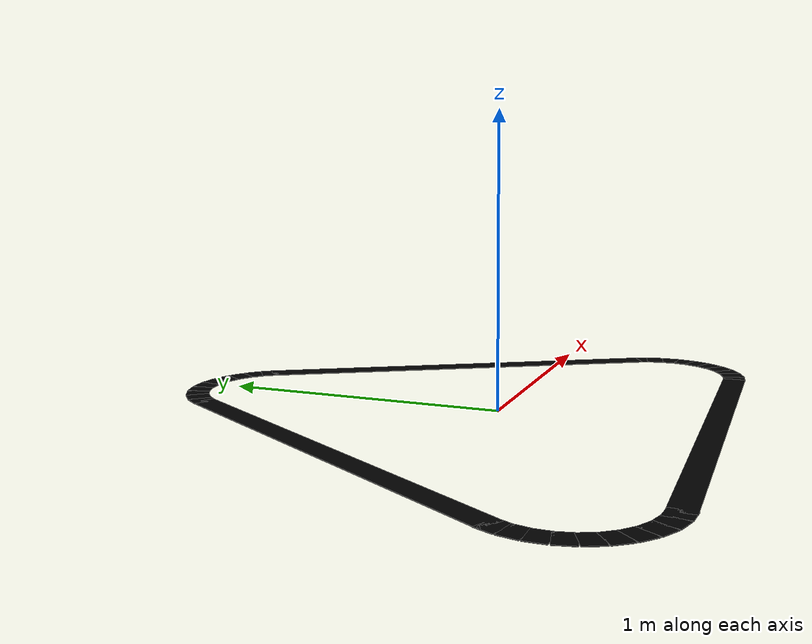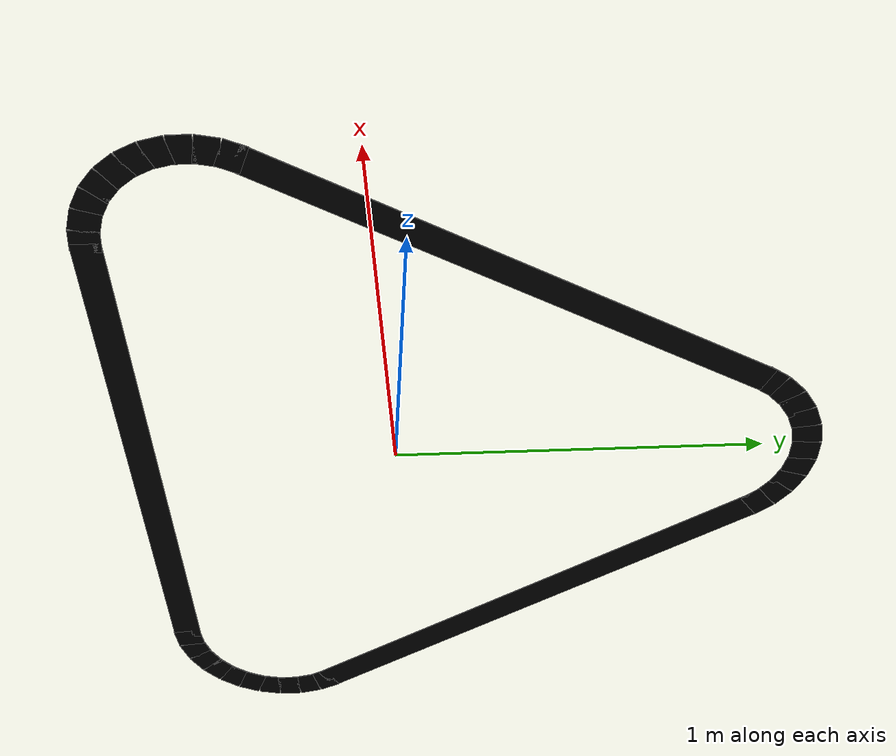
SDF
<?xml version="1.0"?>
<sdf version="1.8">
  <model name="line_track_triangle">
    <static>true</static>
    <link name="track">
      <visual name='seg_000'>
        <pose>-0.226525 1.004580 0.001000 0.000000 0.000000 0.942478</pose>
        <geometry>
          <box>
            <size>0.063335 0.080000 0.002000</size>
          </box>
        </geometry>
      <material>
        <ambient>0.02 0.02 0.02 1</ambient>
        <diffuse>0.02 0.02 0.02 1</diffuse>
        <specular>0.0 0.0 0.0 1</specular>
      </material>
      </visual>
      <visual name='seg_001'>
        <pose>-0.187357 1.048081 0.001000 0.000000 0.000000 0.733038</pose>
        <geometry>
          <box>
            <size>0.063335 0.080000 0.002000</size>
          </box>
        </geometry>
      <material>
        <ambient>0.02 0.02 0.02 1</ambient>
        <diffuse>0.02 0.02 0.02 1</diffuse>
        <specular>0.0 0.0 0.0 1</specular>
      </material>
      </visual>
      <visual name='seg_002'>
        <pose>-0.140000 1.082487 0.001000 0.000000 0.000000 0.523599</pose>
        <geometry>
          <box>
            <size>0.063335 0.080000 0.002000</size>
          </box>
        </geometry>
      <material>
        <ambient>0.02 0.02 0.02 1</ambient>
        <diffuse>0.02 0.02 0.02 1</diffuse>
        <specular>0.0 0.0 0.0 1</specular>
      </material>
      </visual>
      <visual name='seg_003'>
        <pose>-0.086525 1.106296 0.001000 0.000000 0.000000 0.314159</pose>
        <geometry>
          <box>
            <size>0.063335 0.080000 0.002000</size>
          </box>
        </geometry>
      <material>
        <ambient>0.02 0.02 0.02 1</ambient>
        <diffuse>0.02 0.02 0.02 1</diffuse>
        <specular>0.0 0.0 0.0 1</specular>
      </material>
      </visual>
      <visual name='seg_004'>
        <pose>-0.029268 1.118466 0.001000 0.000000 0.000000 0.104720</pose>
        <geometry>
          <box>
            <size>0.063335 0.080000 0.002000</size>
          </box>
        </geometry>
      <material>
        <ambient>0.02 0.02 0.02 1</ambient>
        <diffuse>0.02 0.02 0.02 1</diffuse>
        <specular>0.0 0.0 0.0 1</specular>
      </material>
      </visual>
      <visual name='seg_005'>
        <pose>0.029268 1.118466 0.001000 0.000000 0.000000 -0.104720</pose>
        <geometry>
          <box>
            <size>0.063335 0.080000 0.002000</size>
          </box>
        </geometry>
      <material>
        <ambient>0.02 0.02 0.02 1</ambient>
        <diffuse>0.02 0.02 0.02 1</diffuse>
        <specular>0.0 0.0 0.0 1</specular>
      </material>
      </visual>
      <visual name='seg_006'>
        <pose>0.086525 1.106296 0.001000 0.000000 0.000000 -0.314159</pose>
        <geometry>
          <box>
            <size>0.063335 0.080000 0.002000</size>
          </box>
        </geometry>
      <material>
        <ambient>0.02 0.02 0.02 1</ambient>
        <diffuse>0.02 0.02 0.02 1</diffuse>
        <specular>0.0 0.0 0.0 1</specular>
      </material>
      </visual>
      <visual name='seg_007'>
        <pose>0.140000 1.082487 0.001000 0.000000 0.000000 -0.523599</pose>
        <geometry>
          <box>
            <size>0.063335 0.080000 0.002000</size>
          </box>
        </geometry>
      <material>
        <ambient>0.02 0.02 0.02 1</ambient>
        <diffuse>0.02 0.02 0.02 1</diffuse>
        <specular>0.0 0.0 0.0 1</specular>
      </material>
      </visual>
      <visual name='seg_008'>
        <pose>0.187357 1.048081 0.001000 0.000000 0.000000 -0.733038</pose>
        <geometry>
          <box>
            <size>0.063335 0.080000 0.002000</size>
          </box>
        </geometry>
      <material>
        <ambient>0.02 0.02 0.02 1</ambient>
        <diffuse>0.02 0.02 0.02 1</diffuse>
        <specular>0.0 0.0 0.0 1</specular>
      </material>
      </visual>
      <visual name='seg_009'>
        <pose>0.226525 1.004580 0.001000 0.000000 0.000000 -0.942478</pose>
        <geometry>
          <box>
            <size>0.063335 0.080000 0.002000</size>
          </box>
        </geometry>
      <material>
        <ambient>0.02 0.02 0.02 1</ambient>
        <diffuse>0.02 0.02 0.02 1</diffuse>
        <specular>0.0 0.0 0.0 1</specular>
      </material>
      </visual>
      <visual name='seg_010'>
        <pose>-0.606218 0.350000 0.001000 0.000000 0.000000 -2.094395</pose>
        <geometry>
          <box>
            <size>1.498570 0.080000 0.002000</size>
          </box>
        </geometry>
      <material>
        <ambient>0.02 0.02 0.02 1</ambient>
        <diffuse>0.02 0.02 0.02 1</diffuse>
        <specular>0.0 0.0 0.0 1</specular>
      </material>
      </visual>
      <visual name='seg_011'>
        <pose>-0.756729 -0.698466 0.001000 0.000000 0.000000 -3.246312</pose>
        <geometry>
          <box>
            <size>0.063335 0.080000 0.002000</size>
          </box>
        </geometry>
      <material>
        <ambient>0.02 0.02 0.02 1</ambient>
        <diffuse>0.02 0.02 0.02 1</diffuse>
        <specular>0.0 0.0 0.0 1</specular>
      </material>
      </visual>
      <visual name='seg_012'>
        <pose>-0.813986 -0.686296 0.001000 0.000000 0.000000 -3.455752</pose>
        <geometry>
          <box>
            <size>0.063335 0.080000 0.002000</size>
          </box>
        </geometry>
      <material>
        <ambient>0.02 0.02 0.02 1</ambient>
        <diffuse>0.02 0.02 0.02 1</diffuse>
        <specular>0.0 0.0 0.0 1</specular>
      </material>
      </visual>
      <visual name='seg_013'>
        <pose>-0.867461 -0.662487 0.001000 0.000000 0.000000 -3.665191</pose>
        <geometry>
          <box>
            <size>0.063335 0.080000 0.002000</size>
          </box>
        </geometry>
      <material>
        <ambient>0.02 0.02 0.02 1</ambient>
        <diffuse>0.02 0.02 0.02 1</diffuse>
        <specular>0.0 0.0 0.0 1</specular>
      </material>
      </visual>
      <visual name='seg_014'>
        <pose>-0.914818 -0.628081 0.001000 0.000000 0.000000 -3.874631</pose>
        <geometry>
          <box>
            <size>0.063335 0.080000 0.002000</size>
          </box>
        </geometry>
      <material>
        <ambient>0.02 0.02 0.02 1</ambient>
        <diffuse>0.02 0.02 0.02 1</diffuse>
        <specular>0.0 0.0 0.0 1</specular>
      </material>
      </visual>
      <visual name='seg_015'>
        <pose>-0.953986 -0.584580 0.001000 0.000000 0.000000 -4.084070</pose>
        <geometry>
          <box>
            <size>0.063335 0.080000 0.002000</size>
          </box>
        </geometry>
      <material>
        <ambient>0.02 0.02 0.02 1</ambient>
        <diffuse>0.02 0.02 0.02 1</diffuse>
        <specular>0.0 0.0 0.0 1</specular>
      </material>
      </visual>
      <visual name='seg_016'>
        <pose>-0.983254 -0.533886 0.001000 0.000000 0.000000 -4.293510</pose>
        <geometry>
          <box>
            <size>0.063335 0.080000 0.002000</size>
          </box>
        </geometry>
      <material>
        <ambient>0.02 0.02 0.02 1</ambient>
        <diffuse>0.02 0.02 0.02 1</diffuse>
        <specular>0.0 0.0 0.0 1</specular>
      </material>
      </visual>
      <visual name='seg_017'>
        <pose>-1.001343 -0.478215 0.001000 0.000000 0.000000 -4.502949</pose>
        <geometry>
          <box>
            <size>0.063335 0.080000 0.002000</size>
          </box>
        </geometry>
      <material>
        <ambient>0.02 0.02 0.02 1</ambient>
        <diffuse>0.02 0.02 0.02 1</diffuse>
        <specular>0.0 0.0 0.0 1</specular>
      </material>
      </visual>
      <visual name='seg_018'>
        <pose>-1.007461 -0.420000 0.001000 0.000000 0.000000 -4.712389</pose>
        <geometry>
          <box>
            <size>0.063335 0.080000 0.002000</size>
          </box>
        </geometry>
      <material>
        <ambient>0.02 0.02 0.02 1</ambient>
        <diffuse>0.02 0.02 0.02 1</diffuse>
        <specular>0.0 0.0 0.0 1</specular>
      </material>
      </visual>
      <visual name='seg_019'>
        <pose>-1.001343 -0.361785 0.001000 0.000000 0.000000 -4.921828</pose>
        <geometry>
          <box>
            <size>0.063335 0.080000 0.002000</size>
          </box>
        </geometry>
      <material>
        <ambient>0.02 0.02 0.02 1</ambient>
        <diffuse>0.02 0.02 0.02 1</diffuse>
        <specular>0.0 0.0 0.0 1</specular>
      </material>
      </visual>
      <visual name='seg_020'>
        <pose>-0.983254 -0.306114 0.001000 0.000000 0.000000 -5.131268</pose>
        <geometry>
          <box>
            <size>0.063335 0.080000 0.002000</size>
          </box>
        </geometry>
      <material>
        <ambient>0.02 0.02 0.02 1</ambient>
        <diffuse>0.02 0.02 0.02 1</diffuse>
        <specular>0.0 0.0 0.0 1</specular>
      </material>
      </visual>
      <visual name='seg_021'>
        <pose>-0.000000 -0.700000 0.001000 0.000000 0.000000 -0.000000</pose>
        <geometry>
          <box>
            <size>1.498570 0.080000 0.002000</size>
          </box>
        </geometry>
      <material>
        <ambient>0.02 0.02 0.02 1</ambient>
        <diffuse>0.02 0.02 0.02 1</diffuse>
        <specular>0.0 0.0 0.0 1</specular>
      </material>
      </visual>
      <visual name='seg_022'>
        <pose>0.983254 -0.306114 0.001000 0.000000 0.000000 -1.151917</pose>
        <geometry>
          <box>
            <size>0.063335 0.080000 0.002000</size>
          </box>
        </geometry>
      <material>
        <ambient>0.02 0.02 0.02 1</ambient>
        <diffuse>0.02 0.02 0.02 1</diffuse>
        <specular>0.0 0.0 0.0 1</specular>
      </material>
      </visual>
      <visual name='seg_023'>
        <pose>1.001343 -0.361785 0.001000 0.000000 0.000000 -1.361357</pose>
        <geometry>
          <box>
            <size>0.063335 0.080000 0.002000</size>
          </box>
        </geometry>
      <material>
        <ambient>0.02 0.02 0.02 1</ambient>
        <diffuse>0.02 0.02 0.02 1</diffuse>
        <specular>0.0 0.0 0.0 1</specular>
      </material>
      </visual>
      <visual name='seg_024'>
        <pose>1.007461 -0.420000 0.001000 0.000000 0.000000 -1.570796</pose>
        <geometry>
          <box>
            <size>0.063335 0.080000 0.002000</size>
          </box>
        </geometry>
      <material>
        <ambient>0.02 0.02 0.02 1</ambient>
        <diffuse>0.02 0.02 0.02 1</diffuse>
        <specular>0.0 0.0 0.0 1</specular>
      </material>
      </visual>
      <visual name='seg_025'>
        <pose>1.001343 -0.478215 0.001000 0.000000 0.000000 -1.780236</pose>
        <geometry>
          <box>
            <size>0.063335 0.080000 0.002000</size>
          </box>
        </geometry>
      <material>
        <ambient>0.02 0.02 0.02 1</ambient>
        <diffuse>0.02 0.02 0.02 1</diffuse>
        <specular>0.0 0.0 0.0 1</specular>
      </material>
      </visual>
      <visual name='seg_026'>
        <pose>0.983254 -0.533886 0.001000 0.000000 0.000000 -1.989675</pose>
        <geometry>
          <box>
            <size>0.063335 0.080000 0.002000</size>
          </box>
        </geometry>
      <material>
        <ambient>0.02 0.02 0.02 1</ambient>
        <diffuse>0.02 0.02 0.02 1</diffuse>
        <specular>0.0 0.0 0.0 1</specular>
      </material>
      </visual>
      <visual name='seg_027'>
        <pose>0.953986 -0.584580 0.001000 0.000000 0.000000 -2.199115</pose>
        <geometry>
          <box>
            <size>0.063335 0.080000 0.002000</size>
          </box>
        </geometry>
      <material>
        <ambient>0.02 0.02 0.02 1</ambient>
        <diffuse>0.02 0.02 0.02 1</diffuse>
        <specular>0.0 0.0 0.0 1</specular>
      </material>
      </visual>
      <visual name='seg_028'>
        <pose>0.914818 -0.628081 0.001000 0.000000 0.000000 -2.408554</pose>
        <geometry>
          <box>
            <size>0.063335 0.080000 0.002000</size>
          </box>
        </geometry>
      <material>
        <ambient>0.02 0.02 0.02 1</ambient>
        <diffuse>0.02 0.02 0.02 1</diffuse>
        <specular>0.0 0.0 0.0 1</specular>
      </material>
      </visual>
      <visual name='seg_029'>
        <pose>0.867461 -0.662487 0.001000 0.000000 0.000000 -2.617994</pose>
        <geometry>
          <box>
            <size>0.063335 0.080000 0.002000</size>
          </box>
        </geometry>
      <material>
        <ambient>0.02 0.02 0.02 1</ambient>
        <diffuse>0.02 0.02 0.02 1</diffuse>
        <specular>0.0 0.0 0.0 1</specular>
      </material>
      </visual>
      <visual name='seg_030'>
        <pose>0.813986 -0.686296 0.001000 0.000000 0.000000 -2.827433</pose>
        <geometry>
          <box>
            <size>0.063335 0.080000 0.002000</size>
          </box>
        </geometry>
      <material>
        <ambient>0.02 0.02 0.02 1</ambient>
        <diffuse>0.02 0.02 0.02 1</diffuse>
        <specular>0.0 0.0 0.0 1</specular>
      </material>
      </visual>
      <visual name='seg_031'>
        <pose>0.756729 -0.698466 0.001000 0.000000 0.000000 -3.036873</pose>
        <geometry>
          <box>
            <size>0.063335 0.080000 0.002000</size>
          </box>
        </geometry>
      <material>
        <ambient>0.02 0.02 0.02 1</ambient>
        <diffuse>0.02 0.02 0.02 1</diffuse>
        <specular>0.0 0.0 0.0 1</specular>
      </material>
      </visual>
      <visual name='seg_032'>
        <pose>0.606218 0.350000 0.001000 0.000000 0.000000 2.094395</pose>
        <geometry>
          <box>
            <size>1.498570 0.080000 0.002000</size>
          </box>
        </geometry>
      <material>
        <ambient>0.02 0.02 0.02 1</ambient>
        <diffuse>0.02 0.02 0.02 1</diffuse>
        <specular>0.0 0.0 0.0 1</specular>
      </material>
      </visual>
    </link>
  </model>
</sdf>
